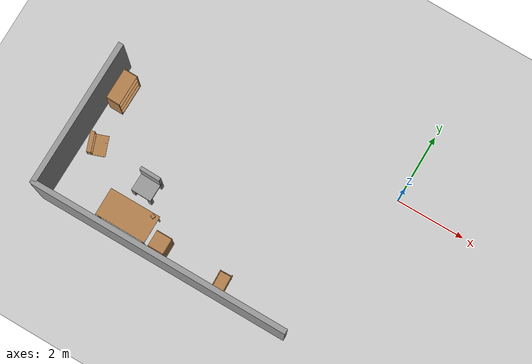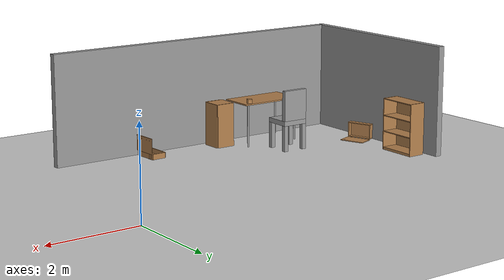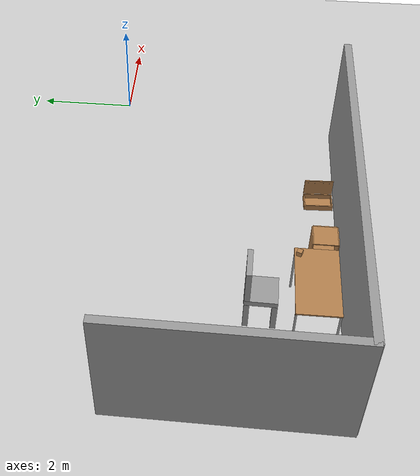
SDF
<sdf version="1.7">
 <world name="default">
  <model name="ground_plane">
   <static>1</static>
   <link name="link">
    <collision name="collision">
     <geometry><plane><normal>0 0 1</normal><size>100 100</size></plane></geometry>
     <surface>
      <contact><collide_bitmask>65535</collide_bitmask></contact>
      <friction><ode><mu>100</mu><mu2>50</mu2></ode></friction>
     </surface>
    </collision>
    <visual name="visual">
     <cast_shadows>0</cast_shadows>
     <geometry><plane><normal>0 0 1</normal><size>100 100</size></plane></geometry>
     <material>
      <script><uri>file://media/materials/scripts/gazebo.material</uri><name>Gazebo/Grey</name></script>
     </material>
    </visual>
   </link>
  </model>
  <model name="table">
   <static>1</static>
   <link name="link">
    <collision name="surface">
     <pose>0 0 1 0 -0 0</pose>
     <geometry><box><size>1.5 0.8 0.03</size></box></geometry>
     <surface><friction><ode><mu>0.6</mu><mu2>0.6</mu2></ode></friction></surface>
    </collision>
    <visual name="visual1">
     <pose>0 0 1 0 -0 0</pose>
     <geometry><box><size>1.5 0.8 0.03</size></box></geometry>
     <material>
      <script><uri>file://media/materials/scripts/gazebo.material</uri><name>Gazebo/Wood</name></script>
     </material>
    </visual>
    <collision name="front_left_leg">
     <pose>0.68 0.38 0.5 0 -0 0</pose>
     <geometry><cylinder><radius>0.02</radius><length>1</length></cylinder></geometry>
    </collision>
    <visual name="front_left_leg">
     <pose>0.68 0.38 0.5 0 -0 0</pose>
     <geometry><cylinder><radius>0.02</radius><length>1</length></cylinder></geometry>
     <material>
      <script><uri>file://media/materials/scripts/gazebo.material</uri><name>Gazebo/Grey</name></script>
     </material>
    </visual>
    <collision name="front_right_leg">
     <pose>0.68 -0.38 0.5 0 -0 0</pose>
     <geometry><cylinder><radius>0.02</radius><length>1</length></cylinder></geometry>
    </collision>
    <visual name="front_right_leg">
     <pose>0.68 -0.38 0.5 0 -0 0</pose>
     <geometry><cylinder><radius>0.02</radius><length>1</length></cylinder></geometry>
     <material>
      <script><uri>file://media/materials/scripts/gazebo.material</uri><name>Gazebo/Grey</name></script>
     </material>
    </visual>
    <collision name="back_right_leg">
     <pose>-0.68 -0.38 0.5 0 -0 0</pose>
     <geometry><cylinder><radius>0.02</radius><length>1</length></cylinder></geometry>
    </collision>
    <visual name="back_right_leg">
     <pose>-0.68 -0.38 0.5 0 -0 0</pose>
     <geometry><cylinder><radius>0.02</radius><length>1</length></cylinder></geometry>
     <material>
      <script><uri>file://media/materials/scripts/gazebo.material</uri><name>Gazebo/Grey</name></script>
     </material>
    </visual>
    <collision name="back_left_leg">
     <pose>-0.68 0.38 0.5 0 -0 0</pose>
     <geometry><cylinder><radius>0.02</radius><length>1</length></cylinder></geometry>
    </collision>
    <visual name="back_left_leg">
     <pose>-0.68 0.38 0.5 0 -0 0</pose>
     <geometry><cylinder><radius>0.02</radius><length>1</length></cylinder></geometry>
     <material>
      <script><uri>file://media/materials/scripts/gazebo.material</uri><name>Gazebo/Grey</name></script>
     </material>
    </visual>
   </link>
   <pose>-5.89533 -4.13682 0 0 -0 0</pose>
  </model>
  <model name="simple_chair">
   <link name="link_0_clone">
    <inertial>
     <mass>1</mass>
     <inertia>
      <ixx>0.166667</ixx>
      <ixy>0</ixy>
      <ixz>0</ixz>
      <iyy>0.166667</iyy>
      <iyz>0</iyz>
      <izz>0.166667</izz>
     </inertia>
    </inertial>
    <pose>-0.041667 -0 0.165833 0 -0 0</pose>
    <visual name="visual">
     <geometry><box><size>0.6 0.6 0.11</size></box></geometry>
     <material>
      <lighting>1</lighting>
      <script><uri>file://media/materials/scripts/gazebo.material</uri><name>Gazebo/Grey</name></script>
      <shader type="pixel"><normal_map>__default__</normal_map></shader>
      <ambient>0.3 0.3 0.3 1</ambient>
      <diffuse>0.7 0.7 0.7 1</diffuse>
      <specular>0.01 0.01 0.01 1</specular>
      <emissive>0 0 0 1</emissive>
     </material>
    </visual>
    <collision name="collision">
     <geometry><box><size>0.6 0.6 0.1</size></box></geometry>
     <surface>
      <friction>
       <ode><mu>1</mu><mu2>1</mu2><fdir1>0 0 0</fdir1><slip1>0</slip1><slip2>0</slip2></ode>
       <torsional>
        <coefficient>1</coefficient>
        <patch_radius>0</patch_radius>
        <surface_radius>0</surface_radius>
        <use_patch_radius>1</use_patch_radius>
        <ode><slip>0</slip></ode>
       </torsional>
      </friction>
      <bounce><restitution_coefficient>0</restitution_coefficient><threshold>1e+06</threshold></bounce>
      <contact>
       <collide_without_contact>0</collide_without_contact>
       <collide_without_contact_bitmask>1</collide_without_contact_bitmask>
       <collide_bitmask>1</collide_bitmask>
       <ode>
        <soft_cfm>0</soft_cfm>
        <soft_erp>0.2</soft_erp>
        <kp>1e+13</kp>
        <kd>1</kd>
        <max_vel>0.01</max_vel>
        <min_depth>0</min_depth>
       </ode>
       <bullet>
        <split_impulse>1</split_impulse>
        <split_impulse_penetration_threshold>-0.01</split_impulse_penetration_threshold>
        <soft_cfm>0</soft_cfm>
        <soft_erp>0.2</soft_erp>
        <kp>1e+13</kp>
        <kd>1</kd>
       </bullet>
      </contact>
     </surface>
    </collision>
   </link>
   <link name="link_1_clone">
    <inertial>
     <mass>1</mass>
     <inertia>
      <ixx>0.166667</ixx>
      <ixy>0</ixy>
      <ixz>0</ixz>
      <iyy>0.166667</iyy>
      <iyz>0</iyz>
      <izz>0.166667</izz>
     </inertia>
    </inertial>
    <pose>-0.291667 0.25 -0.184167 0 -0 0</pose>
    <visual name="visual">
     <geometry><box><size>0.1 0.1 0.6</size></box></geometry>
     <material>
      <lighting>1</lighting>
      <script><uri>file://media/materials/scripts/gazebo.material</uri><name>Gazebo/Grey</name></script>
      <shader type="pixel"><normal_map>__default__</normal_map></shader>
      <ambient>0.3 0.3 0.3 1</ambient>
      <diffuse>0.7 0.7 0.7 1</diffuse>
      <specular>0.01 0.01 0.01 1</specular>
      <emissive>0 0 0 1</emissive>
     </material>
    </visual>
    <collision name="collision">
     <geometry><box><size>0.1 0.1 0.6</size></box></geometry>
     <surface>
      <friction>
       <ode><mu>1</mu><mu2>1</mu2><fdir1>0 0 0</fdir1><slip1>0</slip1><slip2>0</slip2></ode>
       <torsional>
        <coefficient>1</coefficient>
        <patch_radius>0</patch_radius>
        <surface_radius>0</surface_radius>
        <use_patch_radius>1</use_patch_radius>
        <ode><slip>0</slip></ode>
       </torsional>
      </friction>
      <bounce><restitution_coefficient>0</restitution_coefficient><threshold>1e+06</threshold></bounce>
      <contact>
       <collide_without_contact>0</collide_without_contact>
       <collide_without_contact_bitmask>1</collide_without_contact_bitmask>
       <collide_bitmask>1</collide_bitmask>
       <ode>
        <soft_cfm>0</soft_cfm>
        <soft_erp>0.2</soft_erp>
        <kp>1e+13</kp>
        <kd>1</kd>
        <max_vel>0.01</max_vel>
        <min_depth>0</min_depth>
       </ode>
       <bullet>
        <split_impulse>1</split_impulse>
        <split_impulse_penetration_threshold>-0.01</split_impulse_penetration_threshold>
        <soft_cfm>0</soft_cfm>
        <soft_erp>0.2</soft_erp>
        <kp>1e+13</kp>
        <kd>1</kd>
       </bullet>
      </contact>
     </surface>
    </collision>
   </link>
   <link name="link_1_clone_0">
    <inertial>
     <mass>1</mass>
     <inertia>
      <ixx>0.166667</ixx>
      <ixy>0</ixy>
      <ixz>0</ixz>
      <iyy>0.166667</iyy>
      <iyz>0</iyz>
      <izz>0.166667</izz>
     </inertia>
    </inertial>
    <pose>0.208333 0.25 -0.184167 0 -0 0</pose>
    <visual name="visual">
     <geometry><box><size>0.1 0.1 0.6</size></box></geometry>
     <material>
      <lighting>1</lighting>
      <script><uri>file://media/materials/scripts/gazebo.material</uri><name>Gazebo/Grey</name></script>
      <shader type="pixel"><normal_map>__default__</normal_map></shader>
      <ambient>0.3 0.3 0.3 1</ambient>
      <diffuse>0.7 0.7 0.7 1</diffuse>
      <specular>0.01 0.01 0.01 1</specular>
      <emissive>0 0 0 1</emissive>
     </material>
    </visual>
    <collision name="collision">
     <geometry><box><size>0.1 0.1 0.6</size></box></geometry>
     <surface>
      <friction>
       <ode><mu>1</mu><mu2>1</mu2><fdir1>0 0 0</fdir1><slip1>0</slip1><slip2>0</slip2></ode>
       <torsional>
        <coefficient>1</coefficient>
        <patch_radius>0</patch_radius>
        <surface_radius>0</surface_radius>
        <use_patch_radius>1</use_patch_radius>
        <ode><slip>0</slip></ode>
       </torsional>
      </friction>
      <bounce><restitution_coefficient>0</restitution_coefficient><threshold>1e+06</threshold></bounce>
      <contact>
       <collide_without_contact>0</collide_without_contact>
       <collide_without_contact_bitmask>1</collide_without_contact_bitmask>
       <collide_bitmask>1</collide_bitmask>
       <ode>
        <soft_cfm>0</soft_cfm>
        <soft_erp>0.2</soft_erp>
        <kp>1e+13</kp>
        <kd>1</kd>
        <max_vel>0.01</max_vel>
        <min_depth>0</min_depth>
       </ode>
       <bullet>
        <split_impulse>1</split_impulse>
        <split_impulse_penetration_threshold>-0.01</split_impulse_penetration_threshold>
        <soft_cfm>0</soft_cfm>
        <soft_erp>0.2</soft_erp>
        <kp>1e+13</kp>
        <kd>1</kd>
       </bullet>
      </contact>
     </surface>
    </collision>
   </link>
   <link name="link_1_clone_1">
    <inertial>
     <mass>1</mass>
     <inertia>
      <ixx>0.166667</ixx>
      <ixy>0</ixy>
      <ixz>0</ixz>
      <iyy>0.166667</iyy>
      <iyz>0</iyz>
      <izz>0.166667</izz>
     </inertia>
    </inertial>
    <pose>0.208333 -0.25 -0.184167 0 -0 0</pose>
    <visual name="visual">
     <geometry><box><size>0.1 0.1 0.6</size></box></geometry>
     <material>
      <lighting>1</lighting>
      <script><uri>file://media/materials/scripts/gazebo.material</uri><name>Gazebo/Grey</name></script>
      <shader type="pixel"><normal_map>__default__</normal_map></shader>
      <ambient>0.3 0.3 0.3 1</ambient>
      <diffuse>0.7 0.7 0.7 1</diffuse>
      <specular>0.01 0.01 0.01 1</specular>
      <emissive>0 0 0 1</emissive>
     </material>
    </visual>
    <collision name="collision">
     <geometry><box><size>0.1 0.1 0.6</size></box></geometry>
     <surface>
      <friction>
       <ode><mu>1</mu><mu2>1</mu2><fdir1>0 0 0</fdir1><slip1>0</slip1><slip2>0</slip2></ode>
       <torsional>
        <coefficient>1</coefficient>
        <patch_radius>0</patch_radius>
        <surface_radius>0</surface_radius>
        <use_patch_radius>1</use_patch_radius>
        <ode><slip>0</slip></ode>
       </torsional>
      </friction>
      <bounce><restitution_coefficient>0</restitution_coefficient><threshold>1e+06</threshold></bounce>
      <contact>
       <collide_without_contact>0</collide_without_contact>
       <collide_without_contact_bitmask>1</collide_without_contact_bitmask>
       <collide_bitmask>1</collide_bitmask>
       <ode>
        <soft_cfm>0</soft_cfm>
        <soft_erp>0.2</soft_erp>
        <kp>1e+13</kp>
        <kd>1</kd>
        <max_vel>0.01</max_vel>
        <min_depth>0</min_depth>
       </ode>
       <bullet>
        <split_impulse>1</split_impulse>
        <split_impulse_penetration_threshold>-0.01</split_impulse_penetration_threshold>
        <soft_cfm>0</soft_cfm>
        <soft_erp>0.2</soft_erp>
        <kp>1e+13</kp>
        <kd>1</kd>
       </bullet>
      </contact>
     </surface>
    </collision>
   </link>
   <link name="link_1_clone_clone">
    <inertial>
     <mass>1</mass>
     <inertia>
      <ixx>0.166667</ixx>
      <ixy>0</ixy>
      <ixz>0</ixz>
      <iyy>0.166667</iyy>
      <iyz>0</iyz>
      <izz>0.166667</izz>
     </inertia>
    </inertial>
    <pose>-0.291667 -0.25 -0.184167 0 -0 0</pose>
    <visual name="visual">
     <geometry><box><size>0.1 0.1 0.6</size></box></geometry>
     <material>
      <lighting>1</lighting>
      <script><uri>file://media/materials/scripts/gazebo.material</uri><name>Gazebo/Grey</name></script>
      <shader type="pixel"><normal_map>__default__</normal_map></shader>
      <ambient>0.3 0.3 0.3 1</ambient>
      <diffuse>0.7 0.7 0.7 1</diffuse>
      <specular>0.01 0.01 0.01 1</specular>
      <emissive>0 0 0 1</emissive>
     </material>
    </visual>
    <collision name="collision">
     <geometry><box><size>0.1 0.1 0.6</size></box></geometry>
     <surface>
      <friction>
       <ode><mu>1</mu><mu2>1</mu2><fdir1>0 0 0</fdir1><slip1>0</slip1><slip2>0</slip2></ode>
       <torsional>
        <coefficient>1</coefficient>
        <patch_radius>0</patch_radius>
        <surface_radius>0</surface_radius>
        <use_patch_radius>1</use_patch_radius>
        <ode><slip>0</slip></ode>
       </torsional>
      </friction>
      <bounce><restitution_coefficient>0</restitution_coefficient><threshold>1e+06</threshold></bounce>
      <contact>
       <collide_without_contact>0</collide_without_contact>
       <collide_without_contact_bitmask>1</collide_without_contact_bitmask>
       <collide_bitmask>1</collide_bitmask>
       <ode>
        <soft_cfm>0</soft_cfm>
        <soft_erp>0.2</soft_erp>
        <kp>1e+13</kp>
        <kd>1</kd>
        <max_vel>0.01</max_vel>
        <min_depth>0</min_depth>
       </ode>
       <bullet>
        <split_impulse>1</split_impulse>
        <split_impulse_penetration_threshold>-0.01</split_impulse_penetration_threshold>
        <soft_cfm>0</soft_cfm>
        <soft_erp>0.2</soft_erp>
        <kp>1e+13</kp>
        <kd>1</kd>
       </bullet>
      </contact>
     </surface>
    </collision>
   </link>
   <link name="link_2_clone">
    <inertial>
     <mass>1</mass>
     <inertia>
      <ixx>0.166667</ixx>
      <ixy>0</ixy>
      <ixz>0</ixz>
      <iyy>0.166667</iyy>
      <iyz>0</iyz>
      <izz>0.166667</izz>
     </inertia>
    </inertial>
    <pose>0.208333 -0 0.570833 0 -0 0</pose>
    <visual name="visual">
     <geometry><box><size>0.1 0.6 0.7</size></box></geometry>
     <material>
      <lighting>1</lighting>
      <script><uri>file://media/materials/scripts/gazebo.material</uri><name>Gazebo/Grey</name></script>
      <shader type="pixel"><normal_map>__default__</normal_map></shader>
      <ambient>0.3 0.3 0.3 1</ambient>
      <diffuse>0.7 0.7 0.7 1</diffuse>
      <specular>0.01 0.01 0.01 1</specular>
      <emissive>0 0 0 1</emissive>
     </material>
    </visual>
    <collision name="collision">
     <geometry><box><size>0.1 0.6 0.7</size></box></geometry>
     <surface>
      <friction>
       <ode><mu>1</mu><mu2>1</mu2><fdir1>0 0 0</fdir1><slip1>0</slip1><slip2>0</slip2></ode>
       <torsional>
        <coefficient>1</coefficient>
        <patch_radius>0</patch_radius>
        <surface_radius>0</surface_radius>
        <use_patch_radius>1</use_patch_radius>
        <ode><slip>0</slip></ode>
       </torsional>
      </friction>
      <bounce><restitution_coefficient>0</restitution_coefficient><threshold>1e+06</threshold></bounce>
      <contact>
       <collide_without_contact>0</collide_without_contact>
       <collide_without_contact_bitmask>1</collide_without_contact_bitmask>
       <collide_bitmask>1</collide_bitmask>
       <ode>
        <soft_cfm>0</soft_cfm>
        <soft_erp>0.2</soft_erp>
        <kp>1e+13</kp>
        <kd>1</kd>
        <max_vel>0.01</max_vel>
        <min_depth>0</min_depth>
       </ode>
       <bullet>
        <split_impulse>1</split_impulse>
        <split_impulse_penetration_threshold>-0.01</split_impulse_penetration_threshold>
        <soft_cfm>0</soft_cfm>
        <soft_erp>0.2</soft_erp>
        <kp>1e+13</kp>
        <kd>1</kd>
       </bullet>
      </contact>
     </surface>
    </collision>
   </link>
   <joint name="link_0_clone_JOINT_0" type="fixed">
    <parent>link_0_clone</parent>
    <child>link_1_clone_clone</child>
    <physics>
     <ode><limit><cfm>0</cfm><erp>0.2</erp></limit><suspension><cfm>0</cfm><erp>0.2</erp></suspension></ode>
    </physics>
   </joint>
   <joint name="link_0_clone_JOINT_1" type="fixed">
    <parent>link_0_clone</parent>
    <child>link_1_clone</child>
    <physics>
     <ode><limit><cfm>0</cfm><erp>0.2</erp></limit><suspension><cfm>0</cfm><erp>0.2</erp></suspension></ode>
    </physics>
   </joint>
   <joint name="link_0_clone_JOINT_2" type="fixed">
    <parent>link_0_clone</parent>
    <child>link_1_clone_1</child>
    <physics>
     <ode><limit><cfm>0</cfm><erp>0.2</erp></limit><suspension><cfm>0</cfm><erp>0.2</erp></suspension></ode>
    </physics>
   </joint>
   <joint name="link_0_clone_JOINT_3" type="fixed">
    <parent>link_0_clone</parent>
    <child>link_2_clone</child>
    <physics>
     <ode><limit><cfm>0</cfm><erp>0.2</erp></limit><suspension><cfm>0</cfm><erp>0.2</erp></suspension></ode>
    </physics>
   </joint>
   <joint name="link_0_clone_JOINT_4" type="fixed">
    <parent>link_0_clone</parent>
    <child>link_1_clone_0</child>
    <physics>
     <ode><limit><cfm>0</cfm><erp>0.2</erp></limit><suspension><cfm>0</cfm><erp>0.2</erp></suspension></ode>
    </physics>
   </joint>
   <static>0</static>
   <pose>-5.9136 -3.13727 0.484167 0 -0 1.55057</pose>
  </model>
  <model name="cabinet">
   <static>1</static>
   <link name="cabinet_bottom_plate">
    <inertial>
     <pose>0 0 -1 0 -0 0</pose>
     <inertia><ixx>2.05</ixx><ixy>0</ixy><ixz>0</ixz><iyy>2.05</iyy><iyz>0</iyz><izz>2.05</izz></inertia>
     <mass>25</mass>
    </inertial>
    <collision name="cabinet_bottom_plate_geom">
     <pose>0 0 0.01 0 -0 0</pose>
     <geometry><box><size>0.45 0.45 0.02</size></box></geometry>
    </collision>
    <visual name="cabinet_bottom_plate_geom_visual">
     <pose>0 0 0.01 0 -0 0</pose>
     <geometry><box><size>0.45 0.45 0.02</size></box></geometry>
     <material>
      <script><uri>file://media/materials/scripts/gazebo.material</uri><name>Gazebo/Wood</name></script>
     </material>
    </visual>
    <collision name="cabinet_bottom_plate_geom_cabinet_back_plate">
     <pose>0.235 0 0.51 0 -0 0</pose>
     <geometry><box><size>0.02 0.45 1.02</size></box></geometry>
    </collision>
    <visual name="cabinet_bottom_plate_geom_cabinet_back_plate_visual">
     <pose>0.235 0 0.51 0 -0 0</pose>
     <geometry><box><size>0.02 0.45 1.02</size></box></geometry>
     <material>
      <script><uri>file://media/materials/scripts/gazebo.material</uri><name>Gazebo/Wood</name></script>
     </material>
    </visual>
    <collision name="cabinet_bottom_plate_geom_cabinet_left_plate">
     <pose>0 0.235 0.51 0 -0 0</pose>
     <geometry><box><size>0.45 0.02 1.02</size></box></geometry>
    </collision>
    <visual name="cabinet_bottom_plate_geom_cabinet_left_plate_visual">
     <pose>0 0.235 0.51 0 -0 0</pose>
     <geometry><box><size>0.45 0.02 1.02</size></box></geometry>
     <material>
      <script><uri>file://media/materials/scripts/gazebo.material</uri><name>Gazebo/Wood</name></script>
     </material>
    </visual>
    <collision name="cabinet_bottom_plate_geom_cabinet_middle_plate">
     <pose>0 0 0.51 0 -0 0</pose>
     <geometry><box><size>0.45 0.45 0.02</size></box></geometry>
    </collision>
    <visual name="cabinet_bottom_plate_geom_cabinet_middle_plate_visual">
     <pose>0 0 0.51 0 -0 0</pose>
     <geometry><box><size>0.45 0.45 0.02</size></box></geometry>
     <material>
      <script><uri>file://media/materials/scripts/gazebo.material</uri><name>Gazebo/Wood</name></script>
     </material>
    </visual>
    <collision name="cabinet_bottom_plate_geom_cabinet_right_plate">
     <pose>0 -0.235 0.51 0 -0 0</pose>
     <geometry><box><size>0.45 0.02 1.02</size></box></geometry>
    </collision>
    <visual name="cabinet_bottom_plate_geom_cabinet_right_plate_visual">
     <pose>0 -0.235 0.51 0 -0 0</pose>
     <geometry><box><size>0.45 0.02 1.02</size></box></geometry>
     <material>
      <script><uri>file://media/materials/scripts/gazebo.material</uri><name>Gazebo/Wood</name></script>
     </material>
    </visual>
    <collision name="cabinet_bottom_plate_geom_cabinet_top_plate">
     <pose>0 0 1.01 0 -0 0</pose>
     <geometry><box><size>0.45 0.45 0.02</size></box></geometry>
    </collision>
    <visual name="cabinet_bottom_plate_geom_cabinet_top_plate_visual">
     <pose>0 0 1.01 0 -0 0</pose>
     <geometry><box><size>0.45 0.45 0.02</size></box></geometry>
     <material>
      <script><uri>file://media/materials/scripts/gazebo.material</uri><name>Gazebo/Wood</name></script>
     </material>
    </visual>
   </link>
   <pose>-4.80458 -4.31362 0 0 -0 0</pose>
  </model>
  <model name="bookshelf_0">
   <static>1</static>
   <link name="link">
    <inertial><mass>1</mass></inertial>
    <collision name="back">
     <pose>0 0.005 0.6 0 -0 0</pose>
     <geometry><box><size>0.9 0.01 1.2</size></box></geometry>
    </collision>
    <visual name="visual1">
     <pose>0 0.005 0.6 0 -0 0</pose>
     <geometry><box><size>0.9 0.01 1.2</size></box></geometry>
     <material>
      <script><uri>file://media/materials/scripts/gazebo.material</uri><name>Gazebo/Wood</name></script>
     </material>
    </visual>
    <collision name="left_side">
     <pose>0.45 -0.195 0.6 0 -0 0</pose>
     <geometry><box><size>0.02 0.4 1.2</size></box></geometry>
    </collision>
    <visual name="visual2">
     <pose>0.45 -0.195 0.6 0 -0 0</pose>
     <geometry><box><size>0.02 0.4 1.2</size></box></geometry>
     <material>
      <script><uri>file://media/materials/scripts/gazebo.material</uri><name>Gazebo/Wood</name></script>
     </material>
    </visual>
    <collision name="right_side">
     <pose>-0.45 -0.195 0.6 0 -0 0</pose>
     <geometry><box><size>0.02 0.4 1.2</size></box></geometry>
    </collision>
    <visual name="visual3">
     <pose>-0.45 -0.195 0.6 0 -0 0</pose>
     <geometry><box><size>0.02 0.4 1.2</size></box></geometry>
     <material>
      <script><uri>file://media/materials/scripts/gazebo.material</uri><name>Gazebo/Wood</name></script>
     </material>
    </visual>
    <collision name="bottom">
     <pose>0 -0.195 0.03 0 -0 0</pose>
     <geometry><box><size>0.88 0.4 0.06</size></box></geometry>
    </collision>
    <visual name="visual4">
     <pose>0 -0.195 0.03 0 -0 0</pose>
     <geometry><box><size>0.88 0.4 0.06</size></box></geometry>
     <material>
      <script><uri>file://media/materials/scripts/gazebo.material</uri><name>Gazebo/Wood</name></script>
     </material>
    </visual>
    <collision name="top">
     <pose>0 -0.195 1.19 0 -0 0</pose>
     <geometry><box><size>0.88 0.4 0.02</size></box></geometry>
    </collision>
    <visual name="visual5">
     <pose>0 -0.195 1.19 0 -0 0</pose>
     <geometry><box><size>0.88 0.4 0.02</size></box></geometry>
     <material>
      <script><uri>file://media/materials/scripts/gazebo.material</uri><name>Gazebo/Wood</name></script>
     </material>
    </visual>
    <collision name="low_shelf">
     <pose>0 -0.195 0.43 0 -0 0</pose>
     <geometry><box><size>0.88 0.4 0.02</size></box></geometry>
    </collision>
    <visual name="visual6">
     <pose>0 -0.195 0.43 0 -0 0</pose>
     <geometry><box><size>0.88 0.4 0.02</size></box></geometry>
     <material>
      <script><uri>file://media/materials/scripts/gazebo.material</uri><name>Gazebo/Wood</name></script>
     </material>
    </visual>
    <collision name="high_shelf">
     <pose>0 -0.195 0.8 0 -0 0</pose>
     <geometry><box><size>0.88 0.4 0.02</size></box></geometry>
    </collision>
    <visual name="visual7">
     <pose>0 -0.195 0.8 0 -0 0</pose>
     <geometry><box><size>0.88 0.4 0.02</size></box></geometry>
     <material>
      <script><uri>file://media/materials/scripts/gazebo.material</uri><name>Gazebo/Wood</name></script>
     </material>
    </visual>
   </link>
   <pose>-7.9834 -1.30385 0 0 -0 1.55988</pose>
  </model>
  <model name="demo_clean">
   <link name="Wall_1">
    <pose>-8.17617 -2.66151 0 0 0 -1.58051</pose>
    <visual name="Wall_1_Visual">
     <pose>0 0 1.25 0 -0 0</pose>
     <geometry><box><size>4.27044 0.15 2.5</size></box></geometry>
     <material>
      <script><uri>file://media/materials/scripts/gazebo.material</uri><name>Gazebo/Grey</name></script>
      <ambient>1 1 1 1</ambient>
      <shader type="pixel"/>
     </material>
     <meta><layer>0</layer></meta>
    </visual>
    <collision name="Wall_1_Collision">
     <pose>0 0 1.25 0 -0 0</pose>
     <geometry><box><size>4.27044 0.15 2.5</size></box></geometry>
     <surface>
      <friction>
       <ode><mu>1</mu><mu2>1</mu2><fdir1>0 0 0</fdir1><slip1>0</slip1><slip2>0</slip2></ode>
       <torsional>
        <coefficient>1</coefficient>
        <patch_radius>0</patch_radius>
        <surface_radius>0</surface_radius>
        <use_patch_radius>1</use_patch_radius>
        <ode><slip>0</slip></ode>
       </torsional>
      </friction>
      <bounce><restitution_coefficient>0</restitution_coefficient><threshold>1e+06</threshold></bounce>
      <contact>
       <collide_without_contact>0</collide_without_contact>
       <collide_without_contact_bitmask>1</collide_without_contact_bitmask>
       <collide_bitmask>1</collide_bitmask>
       <ode>
        <soft_cfm>0</soft_cfm>
        <soft_erp>0.2</soft_erp>
        <kp>1e+13</kp>
        <kd>1</kd>
        <max_vel>0.01</max_vel>
        <min_depth>0</min_depth>
       </ode>
       <bullet>
        <split_impulse>1</split_impulse>
        <split_impulse_penetration_threshold>-0.01</split_impulse_penetration_threshold>
        <soft_cfm>0</soft_cfm>
        <soft_erp>0.2</soft_erp>
        <kp>1e+13</kp>
        <kd>1</kd>
       </bullet>
      </contact>
     </surface>
    </collision>
   </link>
   <link name="Wall_2">
    <pose>-4.49149 -4.74 0 0 -0 0</pose>
    <visual name="Wall_2_Visual">
     <pose>0 0 1.25 0 -0 0</pose>
     <geometry><box><size>7.5 0.15 2.5</size></box></geometry>
     <material>
      <script><uri>file://media/materials/scripts/gazebo.material</uri><name>Gazebo/Grey</name></script>
      <ambient>1 1 1 1</ambient>
      <shader type="pixel"/>
     </material>
     <meta><layer>0</layer></meta>
    </visual>
    <collision name="Wall_2_Collision">
     <pose>0 0 1.25 0 -0 0</pose>
     <geometry><box><size>7.5 0.15 2.5</size></box></geometry>
     <surface>
      <friction>
       <ode><mu>1</mu><mu2>1</mu2><fdir1>0 0 0</fdir1><slip1>0</slip1><slip2>0</slip2></ode>
       <torsional>
        <coefficient>1</coefficient>
        <patch_radius>0</patch_radius>
        <surface_radius>0</surface_radius>
        <use_patch_radius>1</use_patch_radius>
        <ode><slip>0</slip></ode>
       </torsional>
      </friction>
      <bounce><restitution_coefficient>0</restitution_coefficient><threshold>1e+06</threshold></bounce>
      <contact>
       <collide_without_contact>0</collide_without_contact>
       <collide_without_contact_bitmask>1</collide_without_contact_bitmask>
       <collide_bitmask>1</collide_bitmask>
       <ode>
        <soft_cfm>0</soft_cfm>
        <soft_erp>0.2</soft_erp>
        <kp>1e+13</kp>
        <kd>1</kd>
        <max_vel>0.01</max_vel>
        <min_depth>0</min_depth>
       </ode>
       <bullet>
        <split_impulse>1</split_impulse>
        <split_impulse_penetration_threshold>-0.01</split_impulse_penetration_threshold>
        <soft_cfm>0</soft_cfm>
        <soft_erp>0.2</soft_erp>
        <kp>1e+13</kp>
        <kd>1</kd>
       </bullet>
      </contact>
     </surface>
    </collision>
   </link>
   <static>1</static>
  </model>
  <model name="wooden_case">
   <link name="base">
    <pose>0 0 0.024 0 -0 0</pose>
    <inertial>
     <pose>-0.022184 0 0.171592 0 -0 0</pose>
     <mass>3.96264</mass>
     <inertia>
      <ixx>0.213536</ixx>
      <ixy>0</ixy>
      <ixz>0.000779377</ixz>
      <iyy>0.0708943</iyy>
      <iyz>0</iyz>
      <izz>0.154604</izz>
     </inertia>
    </inertial>
    <collision name="collision_back">
     <pose>-0.053975 0 0.1778 0 -0 0</pose>
     <geometry><box><size>0.01905 0.5461 0.3175</size></box></geometry>
     <surface>
      <contact>
       <poissons_ratio>0.347</poissons_ratio>
       <elastic_modulus>8.8e+09</elastic_modulus>
       <ode><kp>100000</kp><kd>100</kd><max_vel>100</max_vel><min_depth>0.001</min_depth></ode>
      </contact>
      <friction>
       <torsional>
        <coefficient>1</coefficient>
        <use_patch_radius>0</use_patch_radius>
        <surface_radius>0.01</surface_radius>
       </torsional>
      </friction>
     </surface>
    </collision>
    <visual name="visual_back">
     <pose>-0.053975 0 0.1778 0 -0 0</pose>
     <geometry><box><size>0.01905 0.5461 0.3175</size></box></geometry>
     <material>
      <script><uri>file://media/materials/scripts/gazebo.material</uri><name>Gazebo/Wood</name></script>
     </material>
    </visual>
    <collision name="collision_bottom">
     <pose>0 0 0.009525 0 -0 0</pose>
     <geometry><box><size>0.127 0.5842 0.01905</size></box></geometry>
     <surface>
      <contact>
       <poissons_ratio>0.347</poissons_ratio>
       <elastic_modulus>8.8e+09</elastic_modulus>
       <ode><kp>100000</kp><kd>100</kd><max_vel>100</max_vel><min_depth>0.001</min_depth></ode>
      </contact>
      <friction>
       <torsional>
        <coefficient>1</coefficient>
        <use_patch_radius>0</use_patch_radius>
        <surface_radius>0.01</surface_radius>
       </torsional>
      </friction>
     </surface>
    </collision>
    <visual name="visual_bottom">
     <pose>0 0 0.009525 0 -0 0</pose>
     <geometry><box><size>0.127 0.5842 0.01905</size></box></geometry>
     <material>
      <script><uri>file://media/materials/scripts/gazebo.material</uri><name>Gazebo/Wood</name></script>
     </material>
    </visual>
    <collision name="collision_top">
     <pose>0 0 0.346075 0 -0 0</pose>
     <geometry><box><size>0.127 0.5842 0.01905</size></box></geometry>
     <surface>
      <contact>
       <poissons_ratio>0.347</poissons_ratio>
       <elastic_modulus>8.8e+09</elastic_modulus>
       <ode><kp>100000</kp><kd>100</kd><max_vel>100</max_vel><min_depth>0.001</min_depth></ode>
      </contact>
      <friction>
       <torsional>
        <coefficient>1</coefficient>
        <use_patch_radius>0</use_patch_radius>
        <surface_radius>0.01</surface_radius>
       </torsional>
      </friction>
     </surface>
    </collision>
    <visual name="visual_top">
     <pose>0 0 0.346075 0 -0 0</pose>
     <geometry><box><size>0.127 0.5842 0.01905</size></box></geometry>
     <material>
      <script><uri>file://media/materials/scripts/gazebo.material</uri><name>Gazebo/Wood</name></script>
     </material>
    </visual>
    <collision name="collision_left">
     <pose>0 -0.282575 0.1778 0 -0 0</pose>
     <geometry><box><size>0.127 0.01905 0.3175</size></box></geometry>
     <surface>
      <contact>
       <poissons_ratio>0.347</poissons_ratio>
       <elastic_modulus>8.8e+09</elastic_modulus>
       <ode><kp>100000</kp><kd>100</kd><max_vel>100</max_vel><min_depth>0.001</min_depth></ode>
      </contact>
      <friction>
       <torsional>
        <coefficient>1</coefficient>
        <use_patch_radius>0</use_patch_radius>
        <surface_radius>0.01</surface_radius>
       </torsional>
      </friction>
     </surface>
    </collision>
    <visual name="visual_left">
     <pose>0 -0.282575 0.1778 0 -0 0</pose>
     <geometry><box><size>0.127 0.01905 0.3175</size></box></geometry>
     <material>
      <script><uri>file://media/materials/scripts/gazebo.material</uri><name>Gazebo/Wood</name></script>
     </material>
    </visual>
    <collision name="collision_right">
     <pose>0 0.282575 0.1778 0 -0 0</pose>
     <geometry><box><size>0.127 0.01905 0.3175</size></box></geometry>
     <surface>
      <contact>
       <poissons_ratio>0.347</poissons_ratio>
       <elastic_modulus>8.8e+09</elastic_modulus>
       <ode><kp>100000</kp><kd>100</kd><max_vel>100</max_vel><min_depth>0.001</min_depth></ode>
      </contact>
      <friction>
       <torsional>
        <coefficient>1</coefficient>
        <use_patch_radius>0</use_patch_radius>
        <surface_radius>0.01</surface_radius>
       </torsional>
      </friction>
     </surface>
    </collision>
    <visual name="visual_right">
     <pose>0 0.282575 0.1778 0 -0 0</pose>
     <geometry><box><size>0.127 0.01905 0.3175</size></box></geometry>
     <material>
      <script><uri>file://media/materials/scripts/gazebo.material</uri><name>Gazebo/Wood</name></script>
     </material>
    </visual>
    <collision name="collision_block_left">
     <pose>0.0095 -0.2151 -0.012 0 -0 0</pose>
     <geometry><box><size>0.108 0.05 0.024</size></box></geometry>
     <surface>
      <contact>
       <poissons_ratio>0.347</poissons_ratio>
       <elastic_modulus>8.8e+09</elastic_modulus>
       <ode><kp>100000</kp><kd>100</kd><max_vel>100</max_vel><min_depth>0.001</min_depth></ode>
      </contact>
      <friction>
       <torsional>
        <coefficient>1</coefficient>
        <use_patch_radius>0</use_patch_radius>
        <surface_radius>0.01</surface_radius>
       </torsional>
      </friction>
     </surface>
    </collision>
    <visual name="visual_block_left">
     <pose>0.0095 -0.2151 -0.012 0 -0 0</pose>
     <geometry><box><size>0.108 0.05 0.024</size></box></geometry>
     <material>
      <script><uri>file://media/materials/scripts/gazebo.material</uri><name>Gazebo/Wood</name></script>
     </material>
    </visual>
    <collision name="collision_block_right">
     <pose>0.0095 0.2151 -0.012 0 -0 0</pose>
     <geometry><box><size>0.108 0.05 0.024</size></box></geometry>
     <surface>
      <contact>
       <poissons_ratio>0.347</poissons_ratio>
       <elastic_modulus>8.8e+09</elastic_modulus>
       <ode><kp>100000</kp><kd>100</kd><max_vel>100</max_vel><min_depth>0.001</min_depth></ode>
      </contact>
      <friction>
       <torsional>
        <coefficient>1</coefficient>
        <use_patch_radius>0</use_patch_radius>
        <surface_radius>0.01</surface_radius>
       </torsional>
      </friction>
     </surface>
    </collision>
    <visual name="visual_block_right">
     <pose>0.0095 0.2151 -0.012 0 -0 0</pose>
     <geometry><box><size>0.108 0.05 0.024</size></box></geometry>
     <material>
      <script><uri>file://media/materials/scripts/gazebo.material</uri><name>Gazebo/Wood</name></script>
     </material>
    </visual>
   </link>
   <link name="lid">
    <pose>0.243775 0 0.009525 0 -0 0</pose>
    <inertial>
     <mass>1.97874</mass>
     <inertia>
      <ixx>0.0563367</ixx>
      <ixy>0</ixy>
      <ixz>0</ixz>
      <iyy>0.020911</iyy>
      <iyz>0</iyz>
      <izz>0.0771281</izz>
     </inertia>
    </inertial>
    <collision name="collision">
     <geometry><box><size>0.3556 0.5842 0.01905</size></box></geometry>
     <surface>
      <contact>
       <poissons_ratio>0.347</poissons_ratio>
       <elastic_modulus>8.8e+09</elastic_modulus>
       <ode><kp>100000</kp><kd>100</kd><max_vel>100</max_vel><min_depth>0.001</min_depth></ode>
      </contact>
      <friction>
       <torsional>
        <coefficient>1</coefficient>
        <use_patch_radius>0</use_patch_radius>
        <surface_radius>0.01</surface_radius>
       </torsional>
      </friction>
     </surface>
    </collision>
    <visual name="visual">
     <geometry><box><size>0.3556 0.5842 0.01905</size></box></geometry>
     <material>
      <script><uri>file://media/materials/scripts/gazebo.material</uri><name>Gazebo/Wood</name></script>
     </material>
    </visual>
    <visual name="tee_nut_1">
     <pose>0.122 -0.216 0 0 -0 0</pose>
     <geometry><cylinder><radius>0.00635</radius><length>0.0192405</length></cylinder></geometry>
     <material>
      <script><uri>file://media/materials/scripts/gazebo.material</uri><name>Gazebo/Grey</name></script>
     </material>
    </visual>
    <visual name="tee_nut_2">
     <pose>0.122 -0.088 0 0 -0 0</pose>
     <geometry><cylinder><radius>0.00635</radius><length>0.0192405</length></cylinder></geometry>
     <material>
      <script><uri>file://media/materials/scripts/gazebo.material</uri><name>Gazebo/Grey</name></script>
     </material>
    </visual>
    <visual name="tee_nut_3">
     <pose>0.122 0.088 0 0 -0 0</pose>
     <geometry><cylinder><radius>0.00635</radius><length>0.0192405</length></cylinder></geometry>
     <material>
      <script><uri>file://media/materials/scripts/gazebo.material</uri><name>Gazebo/Grey</name></script>
     </material>
    </visual>
    <visual name="tee_nut_4">
     <pose>0.122 0.216 0 0 -0 0</pose>
     <geometry><cylinder><radius>0.00635</radius><length>0.0192405</length></cylinder></geometry>
     <material>
      <script><uri>file://media/materials/scripts/gazebo.material</uri><name>Gazebo/Grey</name></script>
     </material>
    </visual>
   </link>
   <joint name="lid_hinge" type="revolute">
    <pose>-0.1778 0 0.01905 0 -0 0</pose>
    <parent>base</parent>
    <child>lid</child>
    <axis>
     <xyz>0 1 0</xyz>
     <limit><upper>0.523599</upper><lower>-1.5708</lower></limit>
     <dynamics><spring_reference>0</spring_reference><spring_stiffness>0</spring_stiffness></dynamics>
    </axis>
   </joint>
   <pose>-7.88556 -2.88328 -0.001056 -0 -0.000362 0.351522</pose>
  </model>
  <model name="wood_cube_10cm">
   <link name="link">
    <pose>0 0 0.05 0 -0 0</pose>
    <inertial>
     <mass>0.5167</mass>
     <inertia>
      <ixx>0.000861167</ixx>
      <ixy>0</ixy>
      <ixz>0</ixz>
      <iyy>0.000861167</iyy>
      <iyz>0</iyz>
      <izz>0.000861167</izz>
     </inertia>
    </inertial>
    <collision name="collision">
     <geometry><box><size>0.1 0.1 0.1</size></box></geometry>
     <surface>
      <contact>
       <poissons_ratio>0.347</poissons_ratio>
       <elastic_modulus>8.8e+09</elastic_modulus>
       <ode><kp>100000</kp><kd>100</kd><max_vel>100</max_vel><min_depth>0.001</min_depth></ode>
      </contact>
      <friction>
       <torsional>
        <coefficient>1</coefficient>
        <use_patch_radius>0</use_patch_radius>
        <surface_radius>0.01</surface_radius>
       </torsional>
      </friction>
     </surface>
    </collision>
    <visual name="visual">
     <geometry><box><size>0.1 0.1 0.1</size></box></geometry>
     <material>
      <script><uri>file://media/materials/scripts/gazebo.material</uri><name>Gazebo/Wood</name></script>
     </material>
    </visual>
   </link>
   <pose>-5.25548 -3.84368 1.06399 2.77195 -1.57079 -3.14159</pose>
  </model>
  <model name="wooden_case_clone">
   <link name="base">
    <pose>0 0 0.024 0 -0 0</pose>
    <inertial>
     <pose>-0.022184 0 0.171592 0 -0 0</pose>
     <mass>3.96264</mass>
     <inertia>
      <ixx>0.213536</ixx>
      <ixy>0</ixy>
      <ixz>0.000779377</ixz>
      <iyy>0.0708943</iyy>
      <iyz>0</iyz>
      <izz>0.154604</izz>
     </inertia>
    </inertial>
    <collision name="collision_back">
     <pose>-0.053975 0 0.1778 0 -0 0</pose>
     <geometry><box><size>0.01905 0.5461 0.3175</size></box></geometry>
     <surface>
      <contact>
       <poissons_ratio>0.347</poissons_ratio>
       <elastic_modulus>8.8e+09</elastic_modulus>
       <ode><kp>100000</kp><kd>100</kd><max_vel>100</max_vel><min_depth>0.001</min_depth></ode>
      </contact>
      <friction>
       <torsional>
        <coefficient>1</coefficient>
        <use_patch_radius>0</use_patch_radius>
        <surface_radius>0.01</surface_radius>
       </torsional>
      </friction>
     </surface>
    </collision>
    <visual name="visual_back">
     <pose>-0.053975 0 0.1778 0 -0 0</pose>
     <geometry><box><size>0.01905 0.5461 0.3175</size></box></geometry>
     <material>
      <script><uri>file://media/materials/scripts/gazebo.material</uri><name>Gazebo/Wood</name></script>
     </material>
    </visual>
    <collision name="collision_bottom">
     <pose>0 0 0.009525 0 -0 0</pose>
     <geometry><box><size>0.127 0.5842 0.01905</size></box></geometry>
     <surface>
      <contact>
       <poissons_ratio>0.347</poissons_ratio>
       <elastic_modulus>8.8e+09</elastic_modulus>
       <ode><kp>100000</kp><kd>100</kd><max_vel>100</max_vel><min_depth>0.001</min_depth></ode>
      </contact>
      <friction>
       <torsional>
        <coefficient>1</coefficient>
        <use_patch_radius>0</use_patch_radius>
        <surface_radius>0.01</surface_radius>
       </torsional>
      </friction>
     </surface>
    </collision>
    <visual name="visual_bottom">
     <pose>0 0 0.009525 0 -0 0</pose>
     <geometry><box><size>0.127 0.5842 0.01905</size></box></geometry>
     <material>
      <script><uri>file://media/materials/scripts/gazebo.material</uri><name>Gazebo/Wood</name></script>
     </material>
    </visual>
    <collision name="collision_top">
     <pose>0 0 0.346075 0 -0 0</pose>
     <geometry><box><size>0.127 0.5842 0.01905</size></box></geometry>
     <surface>
      <contact>
       <poissons_ratio>0.347</poissons_ratio>
       <elastic_modulus>8.8e+09</elastic_modulus>
       <ode><kp>100000</kp><kd>100</kd><max_vel>100</max_vel><min_depth>0.001</min_depth></ode>
      </contact>
      <friction>
       <torsional>
        <coefficient>1</coefficient>
        <use_patch_radius>0</use_patch_radius>
        <surface_radius>0.01</surface_radius>
       </torsional>
      </friction>
     </surface>
    </collision>
    <visual name="visual_top">
     <pose>0 0 0.346075 0 -0 0</pose>
     <geometry><box><size>0.127 0.5842 0.01905</size></box></geometry>
     <material>
      <script><uri>file://media/materials/scripts/gazebo.material</uri><name>Gazebo/Wood</name></script>
     </material>
    </visual>
    <collision name="collision_left">
     <pose>0 -0.282575 0.1778 0 -0 0</pose>
     <geometry><box><size>0.127 0.01905 0.3175</size></box></geometry>
     <surface>
      <contact>
       <poissons_ratio>0.347</poissons_ratio>
       <elastic_modulus>8.8e+09</elastic_modulus>
       <ode><kp>100000</kp><kd>100</kd><max_vel>100</max_vel><min_depth>0.001</min_depth></ode>
      </contact>
      <friction>
       <torsional>
        <coefficient>1</coefficient>
        <use_patch_radius>0</use_patch_radius>
        <surface_radius>0.01</surface_radius>
       </torsional>
      </friction>
     </surface>
    </collision>
    <visual name="visual_left">
     <pose>0 -0.282575 0.1778 0 -0 0</pose>
     <geometry><box><size>0.127 0.01905 0.3175</size></box></geometry>
     <material>
      <script><uri>file://media/materials/scripts/gazebo.material</uri><name>Gazebo/Wood</name></script>
     </material>
    </visual>
    <collision name="collision_right">
     <pose>0 0.282575 0.1778 0 -0 0</pose>
     <geometry><box><size>0.127 0.01905 0.3175</size></box></geometry>
     <surface>
      <contact>
       <poissons_ratio>0.347</poissons_ratio>
       <elastic_modulus>8.8e+09</elastic_modulus>
       <ode><kp>100000</kp><kd>100</kd><max_vel>100</max_vel><min_depth>0.001</min_depth></ode>
      </contact>
      <friction>
       <torsional>
        <coefficient>1</coefficient>
        <use_patch_radius>0</use_patch_radius>
        <surface_radius>0.01</surface_radius>
       </torsional>
      </friction>
     </surface>
    </collision>
    <visual name="visual_right">
     <pose>0 0.282575 0.1778 0 -0 0</pose>
     <geometry><box><size>0.127 0.01905 0.3175</size></box></geometry>
     <material>
      <script><uri>file://media/materials/scripts/gazebo.material</uri><name>Gazebo/Wood</name></script>
     </material>
    </visual>
    <collision name="collision_block_left">
     <pose>0.0095 -0.2151 -0.012 0 -0 0</pose>
     <geometry><box><size>0.108 0.05 0.024</size></box></geometry>
     <surface>
      <contact>
       <poissons_ratio>0.347</poissons_ratio>
       <elastic_modulus>8.8e+09</elastic_modulus>
       <ode><kp>100000</kp><kd>100</kd><max_vel>100</max_vel><min_depth>0.001</min_depth></ode>
      </contact>
      <friction>
       <torsional>
        <coefficient>1</coefficient>
        <use_patch_radius>0</use_patch_radius>
        <surface_radius>0.01</surface_radius>
       </torsional>
      </friction>
     </surface>
    </collision>
    <visual name="visual_block_left">
     <pose>0.0095 -0.2151 -0.012 0 -0 0</pose>
     <geometry><box><size>0.108 0.05 0.024</size></box></geometry>
     <material>
      <script><uri>file://media/materials/scripts/gazebo.material</uri><name>Gazebo/Wood</name></script>
     </material>
    </visual>
    <collision name="collision_block_right">
     <pose>0.0095 0.2151 -0.012 0 -0 0</pose>
     <geometry><box><size>0.108 0.05 0.024</size></box></geometry>
     <surface>
      <contact>
       <poissons_ratio>0.347</poissons_ratio>
       <elastic_modulus>8.8e+09</elastic_modulus>
       <ode><kp>100000</kp><kd>100</kd><max_vel>100</max_vel><min_depth>0.001</min_depth></ode>
      </contact>
      <friction>
       <torsional>
        <coefficient>1</coefficient>
        <use_patch_radius>0</use_patch_radius>
        <surface_radius>0.01</surface_radius>
       </torsional>
      </friction>
     </surface>
    </collision>
    <visual name="visual_block_right">
     <pose>0.0095 0.2151 -0.012 0 -0 0</pose>
     <geometry><box><size>0.108 0.05 0.024</size></box></geometry>
     <material>
      <script><uri>file://media/materials/scripts/gazebo.material</uri><name>Gazebo/Wood</name></script>
     </material>
    </visual>
   </link>
   <link name="lid">
    <pose>0.243775 0 0.009525 0 -0 0</pose>
    <inertial>
     <mass>1.97874</mass>
     <inertia>
      <ixx>0.0563367</ixx>
      <ixy>0</ixy>
      <ixz>0</ixz>
      <iyy>0.020911</iyy>
      <iyz>0</iyz>
      <izz>0.0771281</izz>
     </inertia>
    </inertial>
    <collision name="collision">
     <geometry><box><size>0.3556 0.5842 0.01905</size></box></geometry>
     <surface>
      <contact>
       <poissons_ratio>0.347</poissons_ratio>
       <elastic_modulus>8.8e+09</elastic_modulus>
       <ode><kp>100000</kp><kd>100</kd><max_vel>100</max_vel><min_depth>0.001</min_depth></ode>
      </contact>
      <friction>
       <torsional>
        <coefficient>1</coefficient>
        <use_patch_radius>0</use_patch_radius>
        <surface_radius>0.01</surface_radius>
       </torsional>
      </friction>
     </surface>
    </collision>
    <visual name="visual">
     <geometry><box><size>0.3556 0.5842 0.01905</size></box></geometry>
     <material>
      <script><uri>file://media/materials/scripts/gazebo.material</uri><name>Gazebo/Wood</name></script>
     </material>
    </visual>
    <visual name="tee_nut_1">
     <pose>0.122 -0.216 0 0 -0 0</pose>
     <geometry><cylinder><radius>0.00635</radius><length>0.0192405</length></cylinder></geometry>
     <material>
      <script><uri>file://media/materials/scripts/gazebo.material</uri><name>Gazebo/Grey</name></script>
     </material>
    </visual>
    <visual name="tee_nut_2">
     <pose>0.122 -0.088 0 0 -0 0</pose>
     <geometry><cylinder><radius>0.00635</radius><length>0.0192405</length></cylinder></geometry>
     <material>
      <script><uri>file://media/materials/scripts/gazebo.material</uri><name>Gazebo/Grey</name></script>
     </material>
    </visual>
    <visual name="tee_nut_3">
     <pose>0.122 0.088 0 0 -0 0</pose>
     <geometry><cylinder><radius>0.00635</radius><length>0.0192405</length></cylinder></geometry>
     <material>
      <script><uri>file://media/materials/scripts/gazebo.material</uri><name>Gazebo/Grey</name></script>
     </material>
    </visual>
    <visual name="tee_nut_4">
     <pose>0.122 0.216 0 0 -0 0</pose>
     <geometry><cylinder><radius>0.00635</radius><length>0.0192405</length></cylinder></geometry>
     <material>
      <script><uri>file://media/materials/scripts/gazebo.material</uri><name>Gazebo/Grey</name></script>
     </material>
    </visual>
   </link>
   <joint name="lid_hinge" type="revolute">
    <pose>-0.1778 0 0.01905 0 -0 0</pose>
    <parent>base</parent>
    <child>lid</child>
    <axis>
     <xyz>0 1 0</xyz>
     <limit><upper>0.523599</upper><lower>-1.5708</lower></limit>
     <dynamics><spring_reference>0</spring_reference><spring_stiffness>0</spring_stiffness></dynamics>
    </axis>
   </joint>
   <pose>-2.74981 -4.33086 0.06245 -0 -1.57069 0.03375</pose>
  </model>
 </world>
</sdf>
